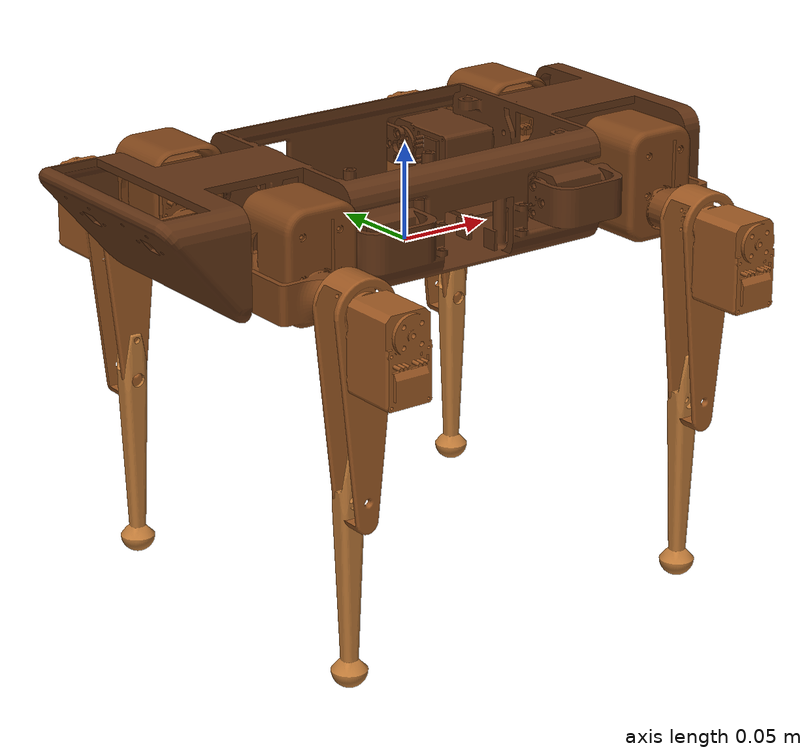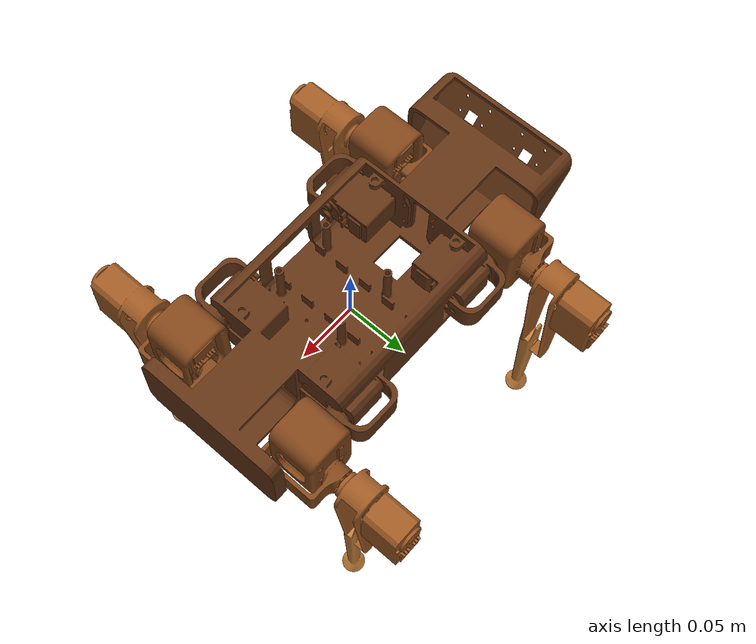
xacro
<?xml version="1.0"?>
<robot xmlns:xacro="http://www.ros.org/wiki/xacro" name="quad_quad_bot">
    <!-- Mode selection -->
    <xacro:arg name="sim" default="true"/>

    <!-- Hardware args -->
    <xacro:arg name="hardware_plugin" default="mock_components/GenericSystem"/>

    <!-- Common leg placement/orientation values (from chassis_sub.SLDASM export, single reference limb) -->
    <xacro:property name="leg_x" value="-0.0828"/>
    <xacro:property name="leg_y" value="-0.056"/>
    <xacro:property name="leg_z" value="0.0285"/>
    <xacro:property name="leg_roll" value="1.5708"/>
    <xacro:property name="leg_pitch" value="0"/>
    <xacro:property name="leg_yaw" value="-1.5708"/>

    <!-- Import macros from other files -->
    <xacro:include filename="$(find bot_description)/urdf/body.urdf.xacro"/>
    <xacro:include filename="$(find bot_description)/urdf/limb.urdf.xacro"/>
    <xacro:include filename="$(find bot_description)/urdf/ros2_control.urdf.xacro"/>
    <xacro:include filename="$(find bot_description)/urdf/gazebo.urdf.xacro"/>

    <!-- Call macros -->
    <xacro:body/>
    <xacro:limb prefix="fl" x="${leg_x}"  y="${leg_y}"  z="${leg_z}" r="${leg_roll}" p="${leg_pitch}" yw="${leg_yaw}"  inverted_shoulder="false" hfe_axis_mult="1" kfe_axis_mult="1"/>
    <xacro:limb prefix="fr" x="${leg_x}"  y="${-leg_y}" z="${leg_z}" r="${leg_roll}" p="${leg_pitch}" yw="${-leg_yaw}" inverted_shoulder="true"  hfe_axis_mult="-1" kfe_axis_mult="-1"/>
    <xacro:limb prefix="bl" x="${-leg_x}" y="${leg_y}"  z="${leg_z}" r="${leg_roll}" p="${leg_pitch}" yw="${leg_yaw}"  inverted_shoulder="true"  hfe_axis_mult="-1" kfe_axis_mult="-1"/>
    <xacro:limb prefix="br" x="${-leg_x}" y="${-leg_y}" z="${leg_z}" r="${leg_roll}" p="${leg_pitch}" yw="${-leg_yaw}" inverted_shoulder="false" hfe_axis_mult="1" kfe_axis_mult="1"/>

    <xacro:if value="$(arg sim)">
        <xacro:ros2_control name="GazeboSystem" hardware_plugin="gz_ros2_control/GazeboSimSystem" is_hardware="false"/>
        <xacro:gazebo_ros2_control/>
    </xacro:if>
    <xacro:unless value="$(arg sim)">
        <xacro:ros2_control name="HardwareSystem" hardware_plugin="$(arg hardware_plugin)" is_hardware="true"/>
    </xacro:unless>
</robot>

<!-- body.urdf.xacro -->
<robot xmlns:xacro="http://www.ros.org/wiki/xacro" name="body">
    <xacro:macro name="body" params="">
        <!-- Links -->
        <link name="base_link"/>
        <link name="body_link">
            <inertial>
                    <origin xyz="-0.000889242251136346 0.00065866860454622 0.0252390940732559" rpy="0 0 0" />
                    <mass value="0.482255179604208" />
                    <inertia ixx="0.000590030011142084" ixy="1.74833019226649E-07" ixz="1.21790430692212E-05"
                             iyy="0.000652273135047948" iyz="5.42047268018053E-08" izz="0.000968313234449169" />
                </inertial>
                <visual>
                    <origin xyz="0 0 0" rpy="0 0 0" />
                    <geometry>
                        <mesh filename="package://bot_description/meshes/body_link.STL" />
                    </geometry>
                    <material name="">
                        <color rgba="0.38 0.20 0.08 1" />
                    </material>
                </visual>
                <collision>
                    <origin xyz="0 0 0" rpy="0 0 0" />
                    <geometry>
                        <mesh filename="package://bot_description/meshes/body_link.STL" />
                    </geometry>
                </collision>
        </link>

        <!-- Joints -->
        <joint name="base_to_body" type="fixed">
            <parent link="base_link"/>
            <child link="body_link"/>
            <origin xyz="0 0 0" rpy="0 0 0"/>
        </joint>
    </xacro:macro>
</robot>

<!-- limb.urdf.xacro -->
<robot xmlns:xacro="http://www.ros.org/wiki/xacro" name="limb">
    <!-- Joint limits loaded from YAML -->
    <xacro:property name="limits"
                    value="${xacro.load_yaml('$(find bot_description)/config/joint_limits.yaml')}"/>

    <!-- Internal limb geometry + internal joints (hfe/kfe). -->
    <xacro:macro name="_limb_core" params="prefix inverted_shoulder hfe_axis_mult kfe_axis_mult">
        <!-- Links -->
        <link name="${prefix}shoulder_link">
            <inertial>
                <origin xyz="0.00189283967211911 -0.00149022104022392 0.0209651260942884" rpy="0 0 0" />
                <mass value="0.0772984767866564" />
                <inertia ixx="2.74184679471754E-05" ixy="-7.12325596084157E-08" ixz="1.19608410119039E-07"
                         iyy="2.07506136746851E-05" iyz="-2.5629423337733E-08" izz="3.03168099471715E-05" />
            </inertial>
            <visual>
                <origin xyz="0 0 0" rpy="0 0 0"/>
                <geometry>
                    <xacro:if value="${inverted_shoulder}">
                        <mesh filename="package://bot_description/meshes/inverted_shoulder_link.STL" scale="0.001 0.001 0.001"/>
                    </xacro:if>
                    <xacro:unless value="${inverted_shoulder}">
                        <mesh filename="package://bot_description/meshes/shoulder_link.STL" scale="1 1 1" />
                    </xacro:unless>
                </geometry>
                <material name="">
                    <color rgba="0.50 0.27 0.10 1" />
                </material>
            </visual>
            <collision>
                <origin xyz="0 0 0" rpy="0 0 0"/>
                <geometry>
                    <xacro:if value="${inverted_shoulder}">
                        <mesh filename="package://bot_description/meshes/inverted_shoulder_link.STL" scale="0.001 0.001 0.001"/>
                    </xacro:if>
                    <xacro:unless value="${inverted_shoulder}">
                        <mesh filename="package://bot_description/meshes/shoulder_link.STL" scale="1 1 1"/>
                    </xacro:unless>
                </geometry>
            </collision>
        </link>
        <link name="${prefix}femur_link">
            <inertial>
                <origin xyz="0.0323249229136636 -9.62316571824495E-07 0.0265797029719004" rpy="0 0 0" />
                <mass value="0.0561441430721167" />
                <inertia ixx="7.25316608559317E-06" ixy="-2.79260011877617E-09" ixz="-1.19212807601372E-07"
                         iyy="4.40862958479968E-05" iyz="3.84318283091856E-10" izz="4.29206771962485E-05" />
            </inertial>
            <visual>
                <origin xyz="0 0 0" rpy="0 0 0" />
                <geometry>
                    <mesh filename="package://bot_description/meshes/femur_link.STL" />
                </geometry>
                <material name="">
                    <color rgba="0.62 0.35 0.14 1" />
                </material>
            </visual>
            <collision>
                <origin xyz="0 0 0" rpy="0 0 0" />
                <geometry>
                    <mesh filename="package://bot_description/meshes/femur_link.STL" />
                </geometry>
            </collision>
        </link>
        <link name="${prefix}tibia_link">
            <inertial>
                <origin xyz="0.039043936151174 -1.78287788882986E-07 -1.41708728744472E-07" rpy="0 0 0" />
                <mass value="0.0146532231932923" />
                <inertia ixx="3.23322248550409E-07" ixy="4.86893510930891E-11" ixz="2.95568494794611E-11"
                         iyy="8.9097637357867E-06" iyz="-1.13366884689962E-11" izz="8.92361996275972E-06" />
            </inertial>
            <visual>
                <origin xyz="0 0 0" rpy="0 0 0" />
                <geometry>
                    <mesh filename="package://bot_description/meshes/tibia_link.STL" />
                </geometry>
                <material name="">
                    <color rgba="0.75 0.48 0.22 1" />
                </material>
            </visual>
            <collision>
                <origin xyz="0 0 0" rpy="0 0 0"/>
                <geometry>
                    <mesh filename="package://bot_description/meshes/tibia_link.STL" scale="1 1 1"/>
                </geometry>
            </collision>
        </link>

        <joint name="${prefix}hfe_joint" type="revolute">
            <xacro:if value="${inverted_shoulder}">
                <origin xyz="0.0298000000000001 -0.0124999999999999 -0.0214999999999999" rpy="-1.5707963267949 0 -1.5707963267949"/>
            </xacro:if>
            <xacro:unless value="${inverted_shoulder}">
                <origin xyz="0.0298000000000001 -0.0124999999999999 0.0214999999999999" rpy="-1.5707963267949 0 -1.5707963267949"/>
            </xacro:unless>

            <parent link="${prefix}shoulder_link"/>
            <child link="${prefix}femur_link"/>
            <axis xyz="0 0 ${hfe_axis_mult * -1}"/>
            <limit lower="${limits['hfe']['lower']}"
                   upper="${limits['hfe']['upper']}"
                   effort="${limits['hfe']['effort']}"
                   velocity="${limits['hfe']['velocity']}"/>
        </joint>

        <joint name="${prefix}kfe_joint" type="revolute">
            <origin xyz="0.0960572429044665 0 0.00999999999999993" rpy="-3.14159265358979 0 0"/>
            <parent link="${prefix}femur_link"/>
            <child link="${prefix}tibia_link"/>
            <axis xyz="0 0 ${kfe_axis_mult * 1}"/>
            <limit lower="${limits['kfe']['lower']}"
                   upper="${limits['kfe']['upper']}"
                   effort="${limits['kfe']['effort']}"
                   velocity="${limits['kfe']['velocity']}"/>
        </joint>
    </xacro:macro>

    <!-- Public limb macro: owns full attachment to body, hiding internal limb construction. -->
    <xacro:macro name="limb" params="prefix x y z r p yw parent_link:=body_link inverted_shoulder hfe_axis_mult kfe_axis_mult">
        <xacro:_limb_core prefix="${prefix}_" inverted_shoulder="${inverted_shoulder}" hfe_axis_mult="${hfe_axis_mult}" kfe_axis_mult="${kfe_axis_mult}"/>
        <joint name="${prefix}_haa_joint" type="revolute">
            <parent link="${parent_link}"/>
            <child link="${prefix}_shoulder_link"/>
            <origin xyz="${x} ${y} ${z}" rpy="${r} ${p} ${yw}"/>
            <axis xyz="0 0 1"/>
            <limit lower="${limits['haa']['lower']}"
                   upper="${limits['haa']['upper']}"
                   effort="${limits['haa']['effort']}"
                   velocity="${limits['haa']['velocity']}"/>
        </joint>
    </xacro:macro>
</robot>

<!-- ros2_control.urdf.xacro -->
<robot xmlns:xacro="http://www.ros.org/wiki/xacro" name="ros2_control">
    <!-- Joint limits and hardware info loaded from YAML -->
    <xacro:property name="limits" value="${xacro.load_yaml('$(find bot_description)/config/joint_limits.yaml')}"/>
    <xacro:property name="motors" value="${xacro.load_yaml('$(find bot_description)/config/motor_params.yaml')}"/>

    <!-- Single ros2 control joint -->
    <xacro:macro name="_ros2_control_joint" params="joint_name lower upper initial:=0.0 is_hardware:=false">
        <joint name="${joint_name}">
            <command_interface name="position">
                <param name="min">${lower}</param>
                <param name="max">${upper}</param>
            </command_interface>
            <state_interface name="position">
                <param name="initial_value">${initial}</param>
            </state_interface>
            <state_interface name="velocity"/>
            <state_interface name="effort"/>
            <!-- Additional params of physical motors if running hardware version -->
            <xacro:if value="${is_hardware}">
                <param name="motor_id">${motors['joints'][joint_name]['motor_id']}</param>
                <param name="direction">${motors['joints'][joint_name]['direction']}</param>
                <param name="offset_ticks">${motors['joints'][joint_name]['offset_ticks']}</param>
                <param name="lower_ticks">${motors['joints'][joint_name]['lower_ticks']}</param>
                <param name="upper_ticks">${motors['joints'][joint_name]['upper_ticks']}</param>
            </xacro:if>
        </joint>
    </xacro:macro>

    <!-- Ros 2 Control Macro with all joints -->
    <xacro:macro name="ros2_control" params="name hardware_plugin is_hardware:=false">
        <ros2_control name="${name}" type="system">
            <hardware>
                <plugin>${hardware_plugin}</plugin>
                <xacro:if value="${is_hardware}">
                    <param name="serial_port">${motors['bus']['serial_port']}</param>
                    <param name="baud_rate">${motors['bus']['baud_rate']}</param>
                    <param name="max_velocity_rad_per_s">${motors['bus']['max_velocity_rad_per_s']}</param>
                    <param name="servo_speed_units">${motors['bus']['servo_speed_units']}</param>
                    <param name="servo_acc_units">${motors['bus']['servo_acc_units']}</param>
                </xacro:if>
            </hardware>

            <xacro:_ros2_control_joint joint_name="fr_haa_joint" lower="${limits['haa']['lower']}"
                                       upper="${limits['haa']['upper']}" is_hardware="${is_hardware}"/>
            <xacro:_ros2_control_joint joint_name="fr_hfe_joint" lower="${limits['hfe']['lower']}"
                                       upper="${limits['hfe']['upper']}" is_hardware="${is_hardware}"/>
            <xacro:_ros2_control_joint joint_name="fr_kfe_joint" lower="${limits['kfe']['lower']}"
                                       upper="${limits['kfe']['upper']}" is_hardware="${is_hardware}"/>

            <xacro:_ros2_control_joint joint_name="fl_haa_joint" lower="${limits['haa']['lower']}"
                                       upper="${limits['haa']['upper']}" is_hardware="${is_hardware}"/>
            <xacro:_ros2_control_joint joint_name="fl_hfe_joint" lower="${limits['hfe']['lower']}"
                                       upper="${limits['hfe']['upper']}" is_hardware="${is_hardware}"/>
            <xacro:_ros2_control_joint joint_name="fl_kfe_joint" lower="${limits['kfe']['lower']}"
                                       upper="${limits['kfe']['upper']}" is_hardware="${is_hardware}"/>

            <xacro:_ros2_control_joint joint_name="br_haa_joint" lower="${limits['haa']['lower']}"
                                       upper="${limits['haa']['upper']}" is_hardware="${is_hardware}"/>
            <xacro:_ros2_control_joint joint_name="br_hfe_joint" lower="${limits['hfe']['lower']}"
                                       upper="${limits['hfe']['upper']}" is_hardware="${is_hardware}"/>
            <xacro:_ros2_control_joint joint_name="br_kfe_joint" lower="${limits['kfe']['lower']}"
                                       upper="${limits['kfe']['upper']}" is_hardware="${is_hardware}"/>

            <xacro:_ros2_control_joint joint_name="bl_haa_joint" lower="${limits['haa']['lower']}"
                                       upper="${limits['haa']['upper']}" is_hardware="${is_hardware}"/>
            <xacro:_ros2_control_joint joint_name="bl_hfe_joint" lower="${limits['hfe']['lower']}"
                                       upper="${limits['hfe']['upper']}" is_hardware="${is_hardware}"/>
            <xacro:_ros2_control_joint joint_name="bl_kfe_joint" lower="${limits['kfe']['lower']}"
                                       upper="${limits['kfe']['upper']}" is_hardware="${is_hardware}"/>
        </ros2_control>
    </xacro:macro>
</robot>
